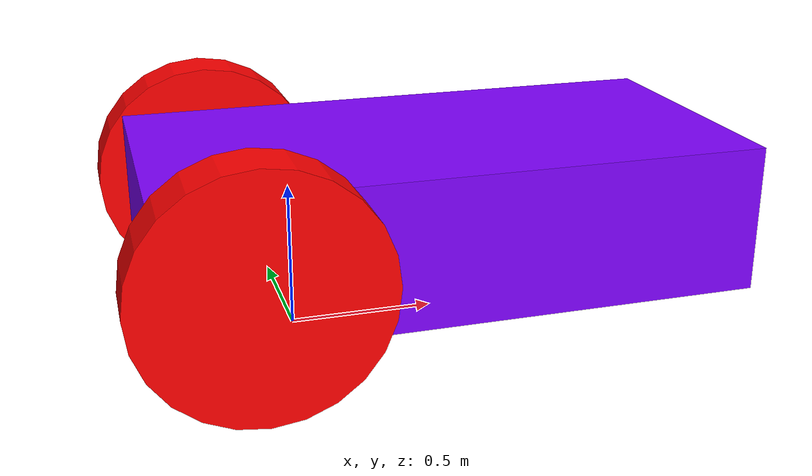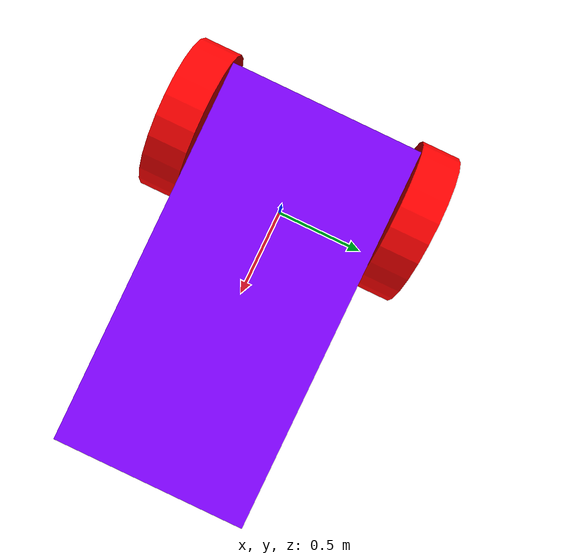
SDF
<?xml version="1.0" ?>
<sdf version="1.8">

   <plugin filename="libignition-gazebo-triggered-publisher-system.so"
        name="ignition::gazebo::systems::TriggeredPublisher">

    <!-- Subscrição do Tópico cmd_vel -->
    <input type="ignition.msgs.Twist" topic="/cmd_vel">
        <match field="linear.x"/>
        <match field="linear.y"/>
        <match field="angular.z"/>
    </input>

    <!-- Publicação da nova velocidade combinada -->
    <output type="ignition.msgs.Twist" topic="/cmd_vel">
        linear: {x: 0.0, y: 0.0, z: 0.0}
        angular: z: 0.0
    </output>

    </plugin>

    <plugin filename="libignition-gazebo-contact-system.so"
        name="ignition::gazebo::systems::Contact">
	</plugin>

    <!--COMEÇO DO VEÍCULO + CHASSI-->
        <model name='meu_carrin' canonical_link='chassis'>
                <link name='chassis'>
                    <pose relative_to='__model__'>0.5 0 0.4 0 0 0</pose>
                    <inertial> <!--inertial properties of the link mass, inertia matix-->
                        <mass>1.14395</mass>
                        <inertia>
                            <ixx>0.095329</ixx>
                            <ixy>0</ixy>
                            <ixz>0</ixz>
                            <iyy>0.381317</iyy>
                            <iyz>0</iyz>
                            <izz>0.476646</izz>
                        </inertia>
                    </inertial>
                    <visual name='visual'>
                        <geometry>
                            <box>
                                <size>2.0 1.0 0.5</size>
                            </box>
                        </geometry>
                        <!--let's add color to our link-->
                        <material>
                            <ambient>0.0 1.0 0.0 1</ambient>
                            <diffuse>0.5 0.0 1.0 1</diffuse>
                            <specular>1.0 0.0 0.5 1</specular>
                        </material>
                    </visual>
                    <collision name='collision'>
                        <geometry>
                            <box>
                                <size>2.0 1.0 0.5</size>
                            </box>
                        </geometry>
                    </collision>

                    <sensor name="imu_sensor" type="imu">
                        <always_on>1</always_on>
                        <update_rate>60</update_rate>
                        <visualize>true</visualize>
                        <topic>imu</topic>
                    </sensor>

                    <sensor name='gpu_lidar' type='gpu_lidar'>
                        <pose relative_to='chassis'>0 0 0.5 0 0 0</pose>
                        <topic>lidar</topic>
                        <update_rate>10</update_rate>
                        <ray>
                            <scan>
                            <horizontal>
                                <samples>640</samples>
                                <resolution>1</resolution>
                                <min_angle>-3.14159</min_angle>
                                <max_angle>3.14159</max_angle>
                            </horizontal>
                            <vertical>
                                <samples>1</samples>
                                <resolution>0.01</resolution>
                                <min_angle>0</min_angle>
                                <max_angle>0</max_angle>
                            </vertical>
                            </scan>
                            <range>
                            <min>0.08</min>
                            <max>10.0</max>
                            <resolution>0.01</resolution>
                            </range>
                        </ray>
                        <always_on>1</always_on>
                        <visualize>true</visualize>
                    </sensor>

	            <sensor type="camera" name="camera">
	                <pose relative_to="chassis">1 0 0 0 0 0</pose>
	                <topic>camera</topic>
        	        <update_rate>30.0</update_rate>
	                <camera name="head">
	                    <horizontal_fov>1.3962634</horizontal_fov>
	                    <image>
	                        <width>800</width>
	                        <height>800</height>
	                        <format>R8G8B8</format>
	                    </image>
	                    <clip>
	                        <near>0.02</near>
	                        <far>300</far>
	                    </clip>
	                    <noise>
	                        <type>gaussian</type>
	                        <mean>0.0</mean>
	                        <stddev>0.007</stddev>
	                    </noise>
	                </camera>
	            </sensor>

                </link>

                <frame name="caster_frame" attached_to='chassis'>
                    <pose>0.8 0 -0.2 0 0 0</pose>
                </frame>

        <!--FIM DO CHASSI-->

        <!--COMEÇO DA CAMERA-->
            <link name="camera">
                <pose relative_to="chassis">1 0 0 0 0 0</pose>
                <visual name='visual'>
                    <geometry>
                        <box>
                            <size>0.1 0.1 0.1</size>
                        </box>
                    </geometry>
                    <material>
                        <ambient>1.0 0.0 0.0 1</ambient>
                        <diffuse>1.0 0.0 0.0 1</diffuse>
                        <specular>1.0 0.0 0.0 1</specular>
                    </material>
                </visual>
                <collision name='collision'>
                    <geometry>
                        <box>
                            <size>0.1 0.1 0.1</size>
                        </box>
                    </geometry>
                </collision>
                <inertial>
                    <mass>0.1</mass>
                    <inertia>
                        <ixx>0.043333</ixx>
                        <ixy>0</ixy>
                        <ixz>0</ixz>
                        <iyy>0.043333</iyy>
                        <iyz>0</iyz>
                        <izz>0.08</izz>
                    </inertia>
                </inertial>
            </link>

            <joint name='camera_joint' type="fixed">
                <origin xyz="1 0 0" rpy="0 0 0"/>
                <parent>chassis</parent>
                <child>camera</child>
            </joint>

        <!--FIM DA CAMERA-->

        <!--COMEÇO DAS RODAS-->
            <link name='roda_esquerda'>
                <pose relative_to="chassis">-0.7 0.6 0 -1.5707 0 0</pose>
                <inertial>
                    <mass>1</mass>
                    <inertia>
                        <ixx>0.043333</ixx>
                        <ixy>0</ixy>
                        <ixz>0</ixz>
                        <iyy>0.043333</iyy>
                        <iyz>0</iyz>
                        <izz>0.08</izz>
                    </inertia>
                </inertial>
                <visual name='visual'>
                    <geometry>
                        <cylinder>
                            <radius>0.4</radius>
                            <length>0.2</length>
                        </cylinder>
                    </geometry>
                    <material>
                        <ambient>1.0 0.0 0.0 1</ambient>
                        <diffuse>1.0 0.0 0.0 1</diffuse>
                        <specular>1.0 0.0 0.0 1</specular>
                    </material>
                </visual>
                <collision name='collision'>
                    <geometry>
                        <cylinder>
                            <radius>0.4</radius>
                            <length>0.2</length>
                        </cylinder>
                    </geometry>
                </collision>
            </link>

            <link name='roda_direita'>
                <pose relative_to="chassis">-0.7 -0.6 0 -1.5707 0 0</pose>
                <inertial>
                    <mass>1</mass>
                    <inertia>
                        <ixx>0.043333</ixx>
                        <ixy>0</ixy>
                        <ixz>0</ixz>
                        <iyy>0.043333</iyy>
                        <iyz>0</iyz>
                        <izz>0.08</izz>
                    </inertia>
                </inertial>
                <visual name='visual'>
                    <geometry>
                        <cylinder>
                            <radius>0.4</radius>
                            <length>0.2</length>
                        </cylinder>
                    </geometry>
                    <material>
                        <ambient>1.0 0.0 0.0 1</ambient>
                        <diffuse>1.0 0.0 0.0 1</diffuse>
                        <specular>1.0 0.0 0.0 1</specular>
                    </material>
                </visual>
                <collision name='collision'>
                    <geometry>
                        <cylinder>
                            <radius>0.4</radius>
                            <length>0.2</length>
                        </cylinder>
                    </geometry>
                </collision>
            </link>

            <link name='caster'>
                <pose relative_to='caster_frame'/>
                <inertial>
                    <mass>1</mass>
                    <inertia>
                        <ixx>0.016</ixx>
                        <ixy>0</ixy>
                        <ixz>0</ixz>
                        <iyy>0.016</iyy>
                        <iyz>0</iyz>
                        <izz>0.016</izz>
                    </inertia>
                </inertial>
                <visual name='visual'>
                    <geometry>
                        <sphere>
                            <radius>0.2</radius>
                        </sphere>
                    </geometry>
                    <material>
                        <ambient>0.0 1 0.0 1</ambient>
                        <diffuse>0.0 1 0.0 1</diffuse>
                        <specular>0.0 1 0.0 1</specular>
                    </material>
                </visual>
                <collision name='collision'>
                    <geometry>
                        <sphere>
                            <radius>0.2</radius>
                        </sphere>
                    </geometry>
                </collision>
            </link>

        <!--FIM DAS RODAS-->

        <!--COMEÇO DAS JUNTAS-->
            <joint name='junta_roda_esquerda' type='revolute'>
                <pose relative_to='roda_esquerda'/>
                <parent>chassis</parent>
                <child>roda_esquerda</child>
                <axis>
                    <xyz expressed_in='__model__'>0 1 0</xyz>
                    <limit>
                        <lower>-1.79769e+308</lower>
                        <upper>1.79769e+308</upper>
                    </limit>
                </axis>
            </joint>

            <joint name='junta_roda_direita' type='revolute'>
                <pose relative_to='roda_direita'/>
                <parent>chassis</parent>
                <child>roda_direita</child>
                <axis>
                    <xyz expressed_in='__model__'>0 1 0</xyz>
                    <limit>
                        <lower>-1.79769e+308</lower>
                        <upper>1.79769e+308</upper>
                    </limit>
                </axis>
            </joint>

            <joint name='caster_wheel' type='ball'>
                <parent>chassis</parent>
                <child>caster</child>
            </joint>
        <!--FIM DAS JUNTAS-->

        <!--INICIO DOS PLUGINS DO MODELO-->
            <plugin
                filename="libignition-gazebo-diff-drive-system.so"
                name="ignition::gazebo::systems::DiffDrive">
                <left_joint>junta_roda_esquerda</left_joint>
                <right_joint>junta_roda_direita</right_joint>
                <wheel_separation>1.2</wheel_separation>
                <wheel_radius>0.4</wheel_radius>
                <odom_publish_frequency>60</odom_publish_frequency>
                <topic>cmd_vel</topic>
            </plugin>

            <plugin filename="libignition-gazebo-triggered-publisher-system.so"
                name="ignition::gazebo::systems::TriggeredPublisher">
                <input type="ignition.msgs.Boolean" topic="/wall/touched">
                    <match>data: true</match>
                </input>
                <output type="ignition.msgs.Twist" topic="/cmd_vel">
                    linear: {x: 0.0}, angular: {z: 0.0}
                </output>
            </plugin>

            <plugin filename="libignition-gazebo-imu-system.so"
                name="ignition::gazebo::systems::Imu">
            </plugin>
        <!--FIM DOS PLUGINS DO MODELO-->
        </model>
</sdf>
